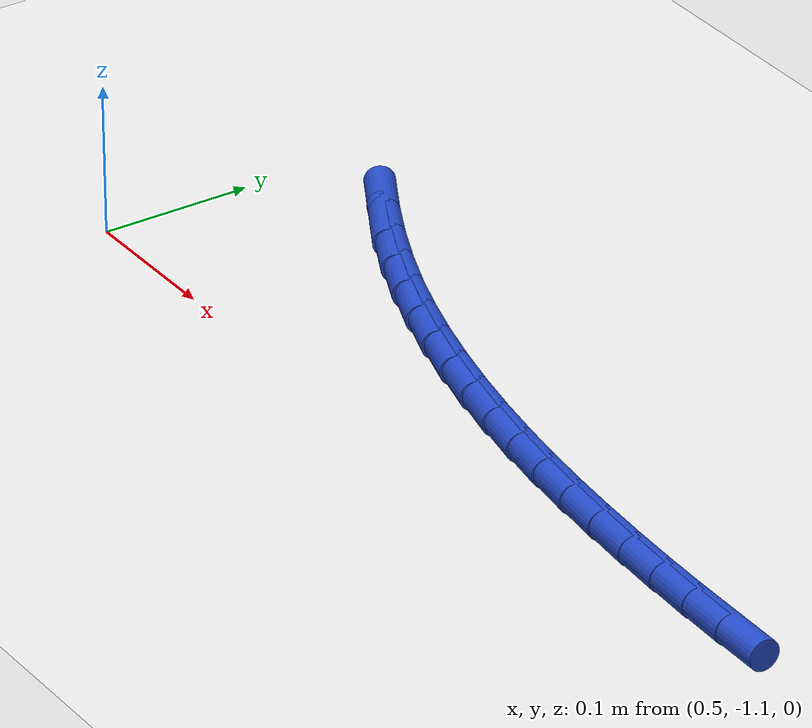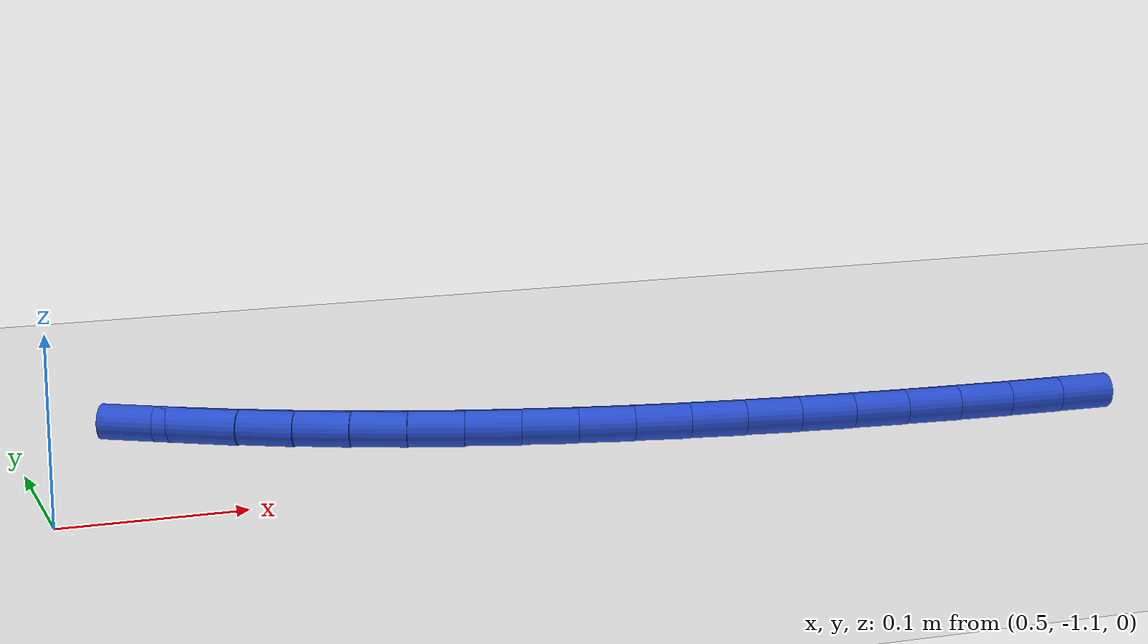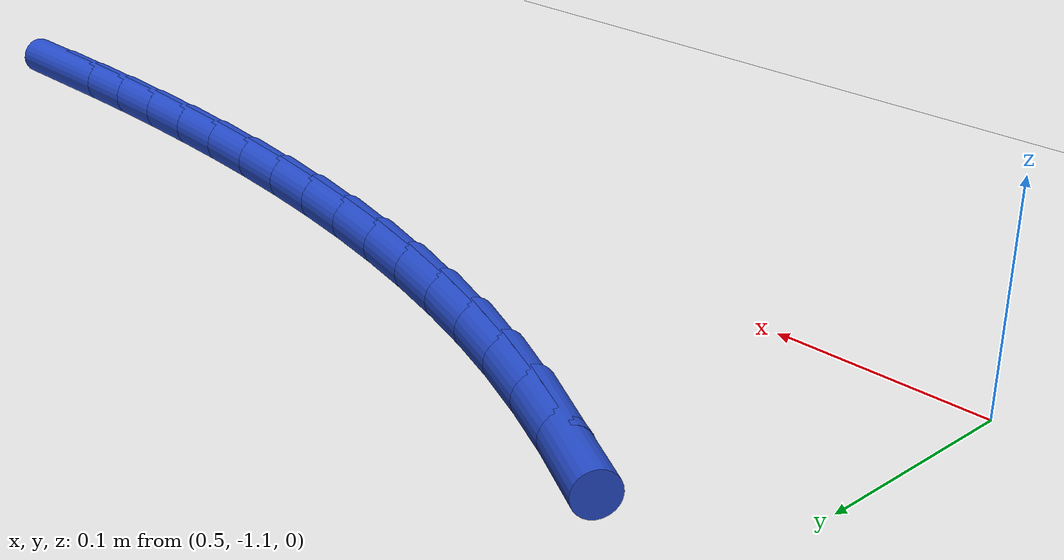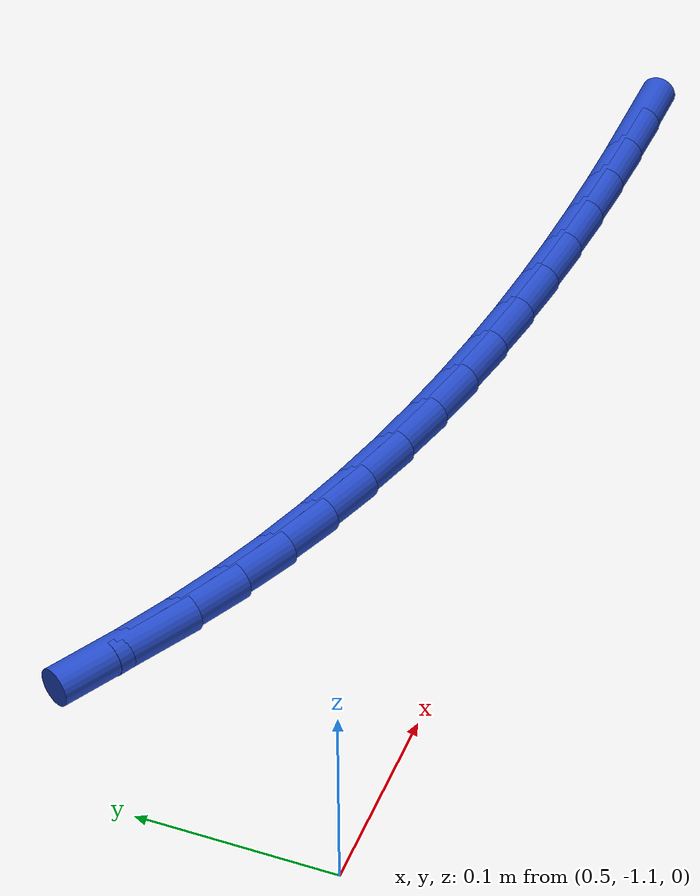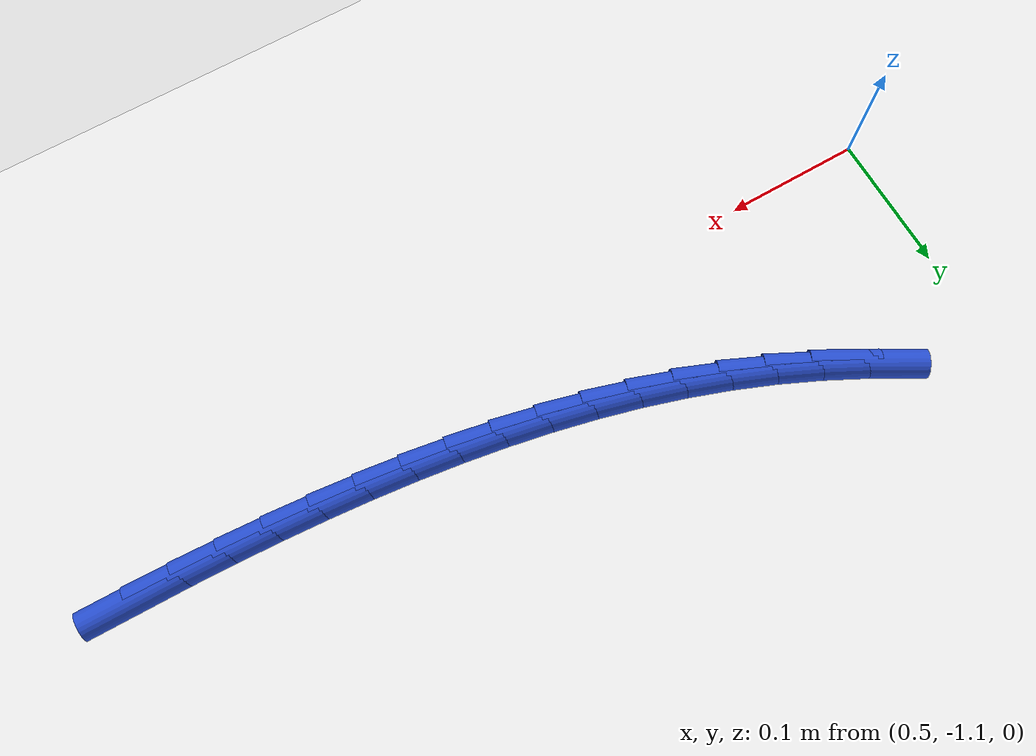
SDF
<sdf version="1.6">
 <world name="default">
  <model name="ground_plane">
   <static>1</static>
   <link name="link">
    <collision name="collision">
     <geometry><plane><normal>0 0 1</normal><size>100 100</size></plane></geometry>
     <surface><friction><ode><mu>100</mu><mu2>50</mu2></ode></friction></surface>
    </collision>
    <visual name="visual">
     <cast_shadows>0</cast_shadows>
     <geometry><plane><normal>0 0 1</normal><size>100 100</size></plane></geometry>
     <material>
      <script><uri>file://media/materials/scripts/gazebo.material</uri><name>Gazebo/WhiteGlow</name></script>
     </material>
    </visual>
   </link>
  </model>
  <model name="line">
   <link name="link_157">
    <pose>1.0799806538701913 -1.0578510886050108 0.01 0 1.57 -0.017716058223591277</pose>
    <collision name="collision">
     <geometry><cylinder><radius>0.01</radius><length>0.08</length></cylinder></geometry>
    </collision>
    <visual name="visual">
     <material>
      <script><name>Gazebo/Blue</name><uri>file://media/materials/scripts/gazebo.material</uri></script>
     </material>
     <geometry><cylinder><radius>0.01</radius><length>0.08</length></cylinder></geometry>
    </visual>
   </link>
   <link name="link_158">
    <pose>1.0479474390051216 -1.0572835269260694 0.01 0 1.57 -0.03607553452075884</pose>
    <collision name="collision">
     <geometry><cylinder><radius>0.01</radius><length>0.08</length></cylinder></geometry>
    </collision>
    <visual name="visual">
     <material>
      <script><name>Gazebo/Blue</name><uri>file://media/materials/scripts/gazebo.material</uri></script>
     </material>
     <geometry><cylinder><radius>0.01</radius><length>0.08</length></cylinder></geometry>
    </visual>
   </link>
   <link name="link_159">
    <pose>1.015885002995758 -1.056126355367366 0.01 0 1.57 -0.05272035292939802</pose>
    <collision name="collision">
     <geometry><cylinder><radius>0.01</radius><length>0.08</length></cylinder></geometry>
    </collision>
    <visual name="visual">
     <material>
      <script><name>Gazebo/Blue</name><uri>file://media/materials/scripts/gazebo.material</uri></script>
     </material>
     <geometry><cylinder><radius>0.01</radius><length>0.08</length></cylinder></geometry>
    </visual>
   </link>
   <link name="link_160">
    <pose>0.9838262101883717 -1.0544346368646873 0.01 0 1.57 -0.0703189239987484</pose>
    <collision name="collision">
     <geometry><cylinder><radius>0.01</radius><length>0.08</length></cylinder></geometry>
    </collision>
    <visual name="visual">
     <material>
      <script><name>Gazebo/Blue</name><uri>file://media/materials/scripts/gazebo.material</uri></script>
     </material>
     <geometry><cylinder><radius>0.01</radius><length>0.08</length></cylinder></geometry>
    </visual>
   </link>
   <link name="link_161">
    <pose>0.9518120654056741 -1.0521797187554707 0.01 0 1.57 -0.09027087749502051</pose>
    <collision name="collision">
     <geometry><cylinder><radius>0.01</radius><length>0.08</length></cylinder></geometry>
    </collision>
    <visual name="visual">
     <material>
      <script><name>Gazebo/Blue</name><uri>file://media/materials/scripts/gazebo.material</uri></script>
     </material>
     <geometry><cylinder><radius>0.01</radius><length>0.08</length></cylinder></geometry>
    </visual>
   </link>
   <link name="link_162">
    <pose>0.9198877469314172 -1.0492900290479361 0.01 0 1.57 -0.11265294811539049</pose>
    <collision name="collision">
     <geometry><cylinder><radius>0.01</radius><length>0.08</length></cylinder></geometry>
    </collision>
    <visual name="visual">
     <material>
      <script><name>Gazebo/Blue</name><uri>file://media/materials/scripts/gazebo.material</uri></script>
     </material>
     <geometry><cylinder><radius>0.01</radius><length>0.08</length></cylinder></geometry>
    </visual>
   </link>
   <link name="link_163">
    <pose>0.8880984670066615 -1.0456936465377822 0.01 0 1.57 -0.13753588139045747</pose>
    <collision name="collision">
     <geometry><cylinder><radius>0.01</radius><length>0.08</length></cylinder></geometry>
    </collision>
    <visual name="visual">
     <material>
      <script><name>Gazebo/Blue</name><uri>file://media/materials/scripts/gazebo.material</uri></script>
     </material>
     <geometry><cylinder><radius>0.01</radius><length>0.08</length></cylinder></geometry>
    </visual>
   </link>
   <link name="link_164">
    <pose>0.8564894378724668 -1.0413186500207074 0.01 0 1.57 -0.1649917187277578</pose>
    <collision name="collision">
     <geometry><cylinder><radius>0.01</radius><length>0.08</length></cylinder></geometry>
    </collision>
    <visual name="visual">
     <material>
      <script><name>Gazebo/Blue</name><uri>file://media/materials/scripts/gazebo.material</uri></script>
     </material>
     <geometry><cylinder><radius>0.01</radius><length>0.08</length></cylinder></geometry>
    </visual>
   </link>
   <link name="link_165">
    <pose>0.8251058717698941 -1.0360931182924114 0.01 0 1.57 -0.19508930904881358</pose>
    <collision name="collision">
     <geometry><cylinder><radius>0.01</radius><length>0.08</length></cylinder></geometry>
    </collision>
    <visual name="visual">
     <material>
      <script><name>Gazebo/Blue</name><uri>file://media/materials/scripts/gazebo.material</uri></script>
     </material>
     <geometry><cylinder><radius>0.01</radius><length>0.08</length></cylinder></geometry>
    </visual>
   </link>
   <link name="link_166">
    <pose>0.7939929809400033 -1.0299451301485925 0.01 0 1.57 -0.2278888379156354</pose>
    <collision name="collision">
     <geometry><cylinder><radius>0.01</radius><length>0.08</length></cylinder></geometry>
    </collision>
    <visual name="visual">
     <material>
      <script><name>Gazebo/Blue</name><uri>file://media/materials/scripts/gazebo.material</uri></script>
     </material>
     <geometry><cylinder><radius>0.01</radius><length>0.08</length></cylinder></geometry>
    </visual>
   </link>
   <link name="link_167">
    <pose>0.7631959776238544 -1.0228027643849493 0.01 0 1.57 -0.26343530296745704</pose>
    <collision name="collision">
     <geometry><cylinder><radius>0.01</radius><length>0.08</length></cylinder></geometry>
    </collision>
    <visual name="visual">
     <material>
      <script><name>Gazebo/Blue</name><uri>file://media/materials/scripts/gazebo.material</uri></script>
     </material>
     <geometry><cylinder><radius>0.01</radius><length>0.08</length></cylinder></geometry>
    </visual>
   </link>
   <link name="link_168">
    <pose>0.732760074062508 -1.0145940997971816 0.01 0 1.57 -0.30175096327688367</pose>
    <collision name="collision">
     <geometry><cylinder><radius>0.01</radius><length>0.08</length></cylinder></geometry>
    </collision>
    <visual name="visual">
     <material>
      <script><name>Gazebo/Blue</name><uri>file://media/materials/scripts/gazebo.material</uri></script>
     </material>
     <geometry><cylinder><radius>0.01</radius><length>0.08</length></cylinder></geometry>
    </visual>
   </link>
   <link name="link_169">
    <pose>0.7027304824970236 -1.005247215180987 0.01 0 1.57 -0.3428269408992841</pose>
    <collision name="collision">
     <geometry><cylinder><radius>0.01</radius><length>0.08</length></cylinder></geometry>
    </collision>
    <visual name="visual">
     <material>
      <script><name>Gazebo/Blue</name><uri>file://media/materials/scripts/gazebo.material</uri></script>
     </material>
     <geometry><cylinder><radius>0.01</radius><length>0.08</length></cylinder></geometry>
    </visual>
   </link>
   <link name="link_170">
    <pose>0.6731524151684614 -0.9946901893320651 0.01 0 1.57 -0.38661267902159346</pose>
    <collision name="collision">
     <geometry><cylinder><radius>0.01</radius><length>0.08</length></cylinder></geometry>
    </collision>
    <visual name="visual">
     <material>
      <script><name>Gazebo/Blue</name><uri>file://media/materials/scripts/gazebo.material</uri></script>
     </material>
     <geometry><cylinder><radius>0.01</radius><length>0.08</length></cylinder></geometry>
    </visual>
   </link>
   <link name="link_171">
    <pose>0.6440710694904391 -0.9828511519229468 0.01 0 1.57 -0.43178318978524294</pose>
    <collision name="collision">
     <geometry><cylinder><radius>0.01</radius><length>0.08</length></cylinder></geometry>
    </collision>
    <visual name="visual">
     <material>
      <script><name>Gazebo/Blue</name><uri>file://media/materials/scripts/gazebo.material</uri></script>
     </material>
     <geometry><cylinder><radius>0.01</radius><length>0.08</length></cylinder></geometry>
    </visual>
   </link>
   <link name="link_172">
    <pose>0.6155207251007997 -0.96969569436756 0.01 0 1.57 -0.4748613919664072</pose>
    <collision name="collision">
     <geometry><cylinder><radius>0.01</radius><length>0.08</length></cylinder></geometry>
    </collision>
    <visual name="visual">
     <material>
      <script><name>Gazebo/Blue</name><uri>file://media/materials/scripts/gazebo.material</uri></script>
     </material>
     <geometry><cylinder><radius>0.01</radius><length>0.08</length></cylinder></geometry>
    </visual>
   </link>
   <link name="link_173">
    <pose>0.587505435469506 -0.9552931219596591 0.01 0 1.57 -0.5152681963811306</pose>
    <collision name="collision">
     <geometry><cylinder><radius>0.01</radius><length>0.08</length></cylinder></geometry>
    </collision>
    <visual name="visual">
     <material>
      <script><name>Gazebo/Blue</name><uri>file://media/materials/scripts/gazebo.material</uri></script>
     </material>
     <geometry><cylinder><radius>0.01</radius><length>0.08</length></cylinder></geometry>
    </visual>
   </link>
  </model>
 </world>
</sdf>
